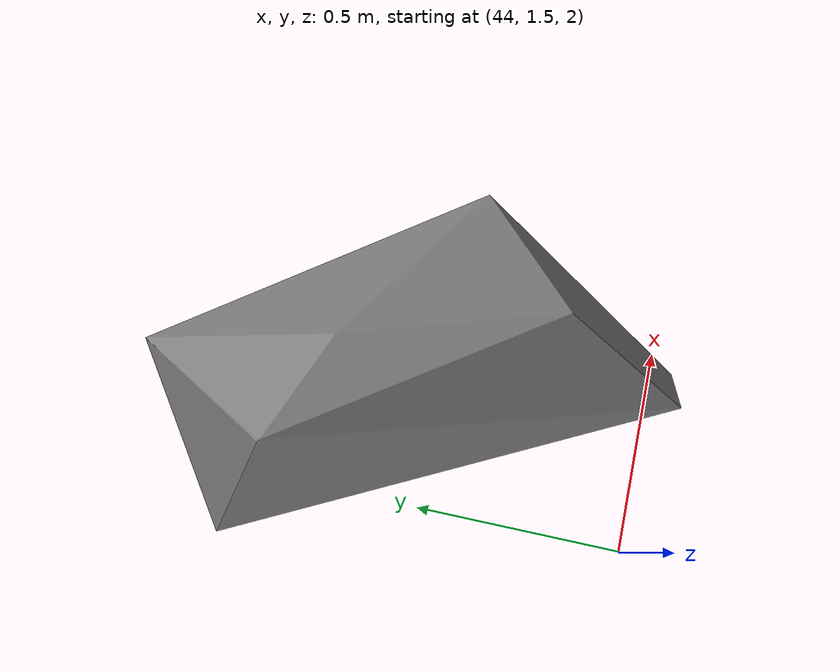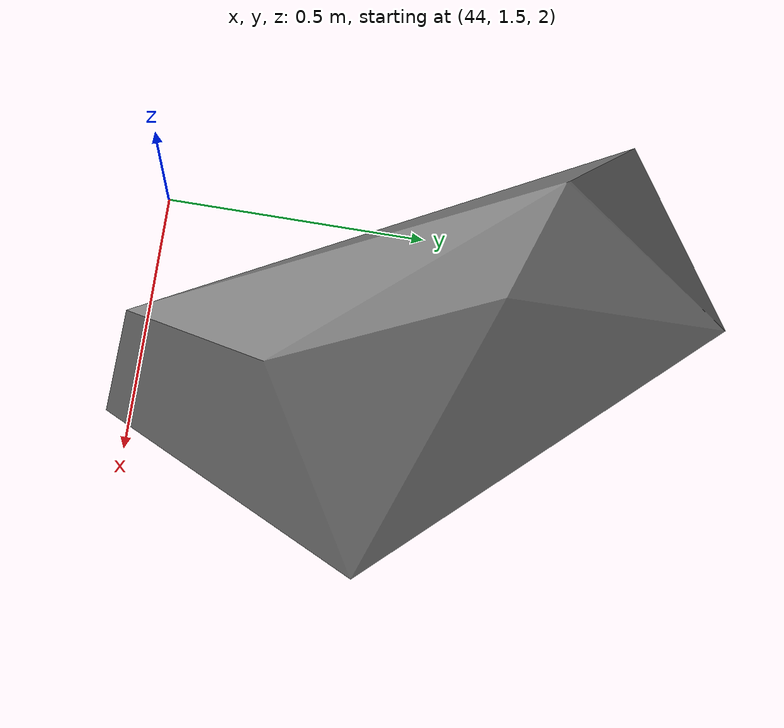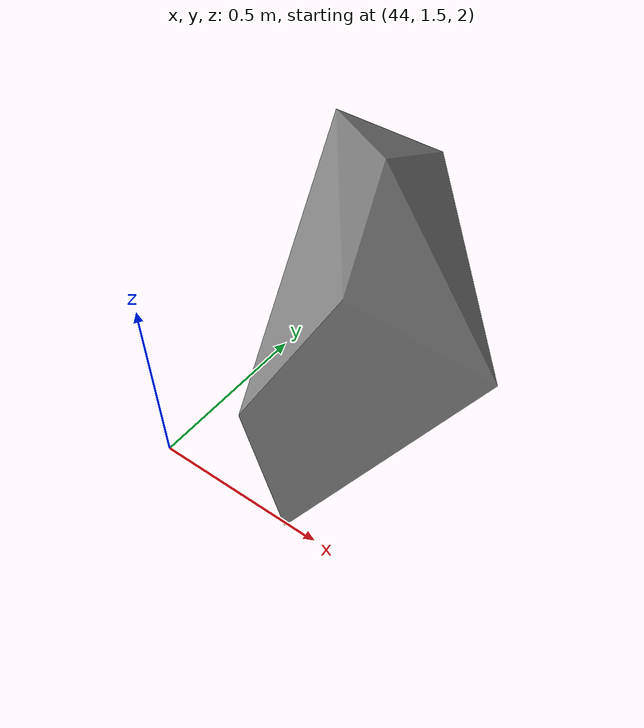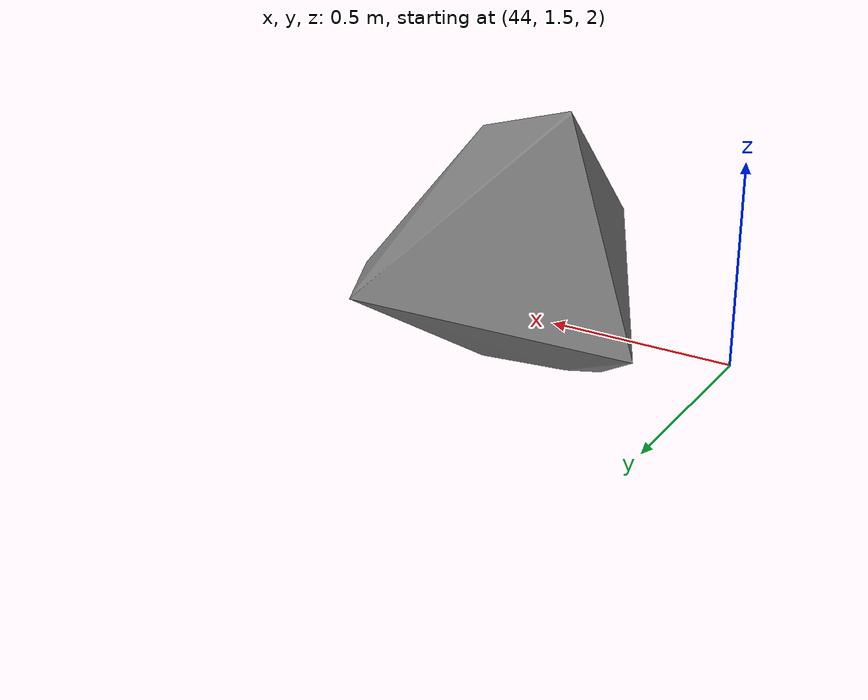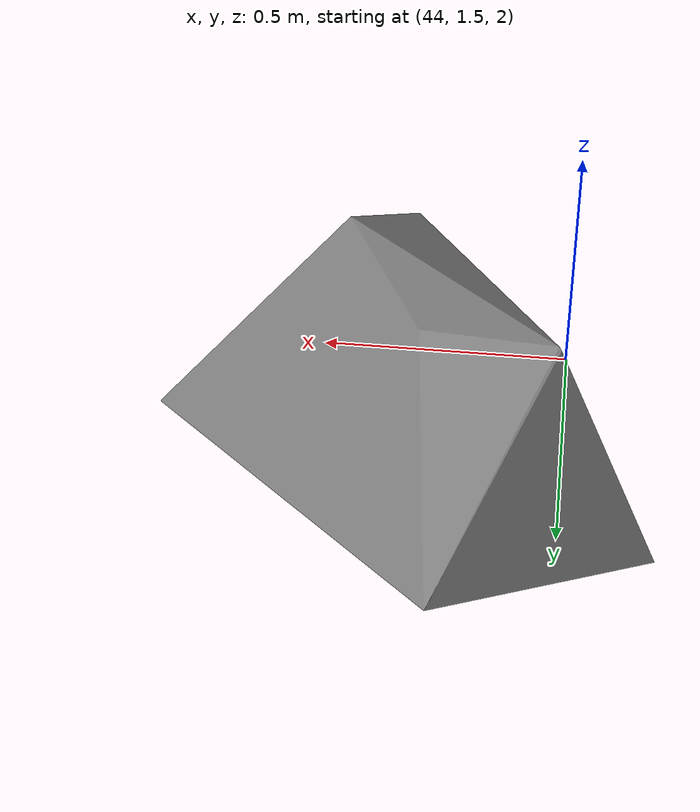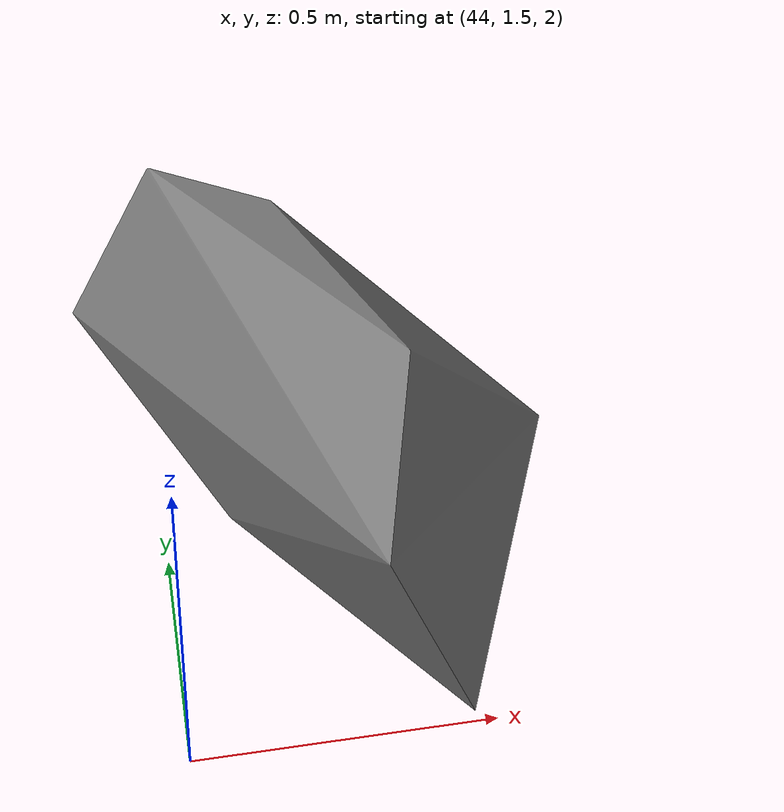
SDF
<sdf version="1.8">
 <model name="blue_mountains">
  <static>true</static>
  <link name="forest_24_20">
   <collision name="tree_17_trunk">
    <pose>43.88058 1.955433 0.2936664 0 0 -2.778348</pose>
    <geometry><cylinder><radius>0.04232648</radius><length>2.06516</length></cylinder></geometry>
   </collision>
   <collision name="plant_17_crown_0">
    <pose>43.8964 1.961449 -0.7389138 0 0 -2.778348</pose>
    <geometry>
     <mesh>
      <uri>model://blue_mountains/meshes/canopy_3_0.dae</uri>
      <scale>0.1693059 0.1693059 0.1535351</scale>
     </mesh>
    </geometry>
   </collision>
   <collision name="plant_17_crown_1">
    <pose>43.8964 1.961449 -0.7389138 0 0 -2.778348</pose>
    <geometry>
     <mesh>
      <uri>model://blue_mountains/meshes/canopy_3_1.dae</uri>
      <scale>0.1693059 0.1693059 0.1535351</scale>
     </mesh>
    </geometry>
   </collision>
   <collision name="tree_24_trunk">
    <pose>46.04396 2.340211 0.6161304 0 0 -0.8757194</pose>
    <geometry><cylinder><radius>0.04414667</radius><length>2.393888</length></cylinder></geometry>
   </collision>
   <collision name="plant_24_crown_0">
    <pose>46.03265 2.353773 -0.5808136 0 0 -0.8757194</pose>
    <geometry>
     <mesh>
      <uri>model://blue_mountains/meshes/canopy_3_0.dae</uri>
      <scale>0.1765867 0.1765867 0.1779744</scale>
     </mesh>
    </geometry>
   </collision>
   <collision name="plant_24_crown_1">
    <pose>46.03265 2.353773 -0.5808136 0 0 -0.8757194</pose>
    <geometry>
     <mesh>
      <uri>model://blue_mountains/meshes/canopy_3_1.dae</uri>
      <scale>0.1765867 0.1765867 0.1779744</scale>
     </mesh>
    </geometry>
   </collision>
   <collision name="tree_25_trunk">
    <pose>46.88848 6.833796 0.8125989 0 0 -0.4132312</pose>
    <geometry><cylinder><radius>0.04309978</radius><length>2.700168</length></cylinder></geometry>
   </collision>
   <collision name="plant_25_crown_0">
    <pose>46.87269 6.840719 -0.5374854 0 0 -0.4132312</pose>
    <geometry>
     <mesh>
      <uri>model://blue_mountains/meshes/canopy_4_0.dae</uri>
      <scale>0.1723991 0.1723991 0.2012076</scale>
     </mesh>
    </geometry>
   </collision>
   <collision name="plant_25_crown_1">
    <pose>46.87269 6.840719 -0.5374854 0 0 -0.4132312</pose>
    <geometry>
     <mesh>
      <uri>model://blue_mountains/meshes/canopy_4_1.dae</uri>
      <scale>0.1723991 0.1723991 0.2012076</scale>
     </mesh>
    </geometry>
   </collision>
   <collision name="tree_69_trunk">
    <pose>40.30244 2.726701 1.00124 0 0 2.627598</pose>
    <geometry><cylinder><radius>0.06481871</radius><length>3.474647</length></cylinder></geometry>
   </collision>
   <collision name="plant_69_crown_0">
    <pose>40.32502 2.713953 -0.7360833 0 0 2.627598</pose>
    <geometry>
     <mesh>
      <uri>model://blue_mountains/meshes/canopy_8_0.dae</uri>
      <scale>0.2592749 0.2592749 0.2585449</scale>
     </mesh>
    </geometry>
   </collision>
   <collision name="plant_69_crown_1">
    <pose>40.32502 2.713953 -0.7360833 0 0 2.627598</pose>
    <geometry>
     <mesh>
      <uri>model://blue_mountains/meshes/canopy_8_1.dae</uri>
      <scale>0.2592749 0.2592749 0.2585449</scale>
     </mesh>
    </geometry>
   </collision>
   <collision name="tree_70_trunk">
    <pose>47.3796 6.376393 1.044188 0 0 1.708533</pose>
    <geometry><cylinder><radius>0.05545289</radius><length>2.698984</length></cylinder></geometry>
   </collision>
   <collision name="plant_70_crown_0">
    <pose>47.38265 6.354422 -0.3053038 0 0 1.708533</pose>
    <geometry>
     <mesh>
      <uri>model://blue_mountains/meshes/canopy_2_0.dae</uri>
      <scale>0.2218116 0.2218116 0.1985788</scale>
     </mesh>
    </geometry>
   </collision>
   <collision name="plant_70_crown_1">
    <pose>47.38265 6.354422 -0.3053038 0 0 1.708533</pose>
    <geometry>
     <mesh>
      <uri>model://blue_mountains/meshes/canopy_2_1.dae</uri>
      <scale>0.2218116 0.2218116 0.1985788</scale>
     </mesh>
    </geometry>
   </collision>
   <collision name="tree_109_trunk">
    <pose>48.53465 3.633613 1.186815 0 0 -0.07925493</pose>
    <geometry><cylinder><radius>0.06679607</radius><length>3.117044</length></cylinder></geometry>
   </collision>
   <collision name="plant_109_crown_0">
    <pose>48.50802 3.635729 -0.3717065 0 0 -0.07925493</pose>
    <geometry>
     <mesh>
      <uri>model://blue_mountains/meshes/canopy_6_0.dae</uri>
      <scale>0.2671843 0.2671843 0.229764</scale>
     </mesh>
    </geometry>
   </collision>
   <collision name="plant_109_crown_1">
    <pose>48.50802 3.635729 -0.3717065 0 0 -0.07925493</pose>
    <geometry>
     <mesh>
      <uri>model://blue_mountains/meshes/canopy_6_1.dae</uri>
      <scale>0.2671843 0.2671843 0.229764</scale>
     </mesh>
    </geometry>
   </collision>
   <collision name="tree_202_trunk">
    <pose>44.90236 4.059264 0.7855443 0 0 -2.673284</pose>
    <geometry><cylinder><radius>0.03918626</radius><length>2.318995</length></cylinder></geometry>
   </collision>
   <collision name="plant_202_crown_0">
    <pose>44.91635 4.066339 -0.3739533 0 0 -2.673284</pose>
    <geometry>
     <mesh><uri>model://blue_mountains/meshes/canopy_5_0.dae</uri><scale>0.156745 0.156745 0.1743063</scale></mesh>
    </geometry>
   </collision>
   <collision name="plant_202_crown_1">
    <pose>44.91635 4.066339 -0.3739533 0 0 -2.673284</pose>
    <geometry>
     <mesh><uri>model://blue_mountains/meshes/canopy_5_1.dae</uri><scale>0.156745 0.156745 0.1743063</scale></mesh>
    </geometry>
   </collision>
   <collision name="tree_219_trunk">
    <pose>42.96822 2.877853 0.8094227 0 0 0.2845838</pose>
    <geometry><cylinder><radius>0.04914544</radius><length>2.870387</length></cylinder></geometry>
   </collision>
   <collision name="plant_219_crown_0">
    <pose>42.94935 2.872334 -0.6257708 0 0 0.2845838</pose>
    <geometry>
     <mesh>
      <uri>model://blue_mountains/meshes/canopy_1_0.dae</uri>
      <scale>0.1965818 0.1965818 0.2120091</scale>
     </mesh>
    </geometry>
   </collision>
   <collision name="plant_219_crown_1">
    <pose>42.94935 2.872334 -0.6257708 0 0 0.2845838</pose>
    <geometry>
     <mesh>
      <uri>model://blue_mountains/meshes/canopy_1_1.dae</uri>
      <scale>0.1965818 0.1965818 0.2120091</scale>
     </mesh>
    </geometry>
   </collision>
   <collision name="tree_225_trunk">
    <pose>45.15792 7.476365 0.06271546 0 0 -1.709854</pose>
    <geometry><cylinder><radius>0.05947654</radius><length>3.167583</length></cylinder></geometry>
   </collision>
   <collision name="plant_225_crown_0">
    <pose>45.16122 7.499926 -1.521076 0 0 -1.709854</pose>
    <geometry>
     <mesh>
      <uri>model://blue_mountains/meshes/canopy_6_0.dae</uri>
      <scale>0.2379061 0.2379061 0.2334894</scale>
     </mesh>
    </geometry>
   </collision>
   <collision name="plant_225_crown_1">
    <pose>45.16122 7.499926 -1.521076 0 0 -1.709854</pose>
    <geometry>
     <mesh>
      <uri>model://blue_mountains/meshes/canopy_6_1.dae</uri>
      <scale>0.2379061 0.2379061 0.2334894</scale>
     </mesh>
    </geometry>
   </collision>
   <collision name="tree_237_trunk">
    <pose>43.37805 6.944122 -0.3870439 0 0 -2.070411</pose>
    <geometry><cylinder><radius>0.0365816</radius><length>1.960356</length></cylinder></geometry>
   </collision>
   <collision name="plant_237_crown_0">
    <pose>43.38506 6.956966 -1.367222 0 0 -2.070411</pose>
    <geometry>
     <mesh>
      <uri>model://blue_mountains/meshes/canopy_3_0.dae</uri>
      <scale>0.1463264 0.1463264 0.1457434</scale>
     </mesh>
    </geometry>
   </collision>
   <collision name="plant_237_crown_1">
    <pose>43.38506 6.956966 -1.367222 0 0 -2.070411</pose>
    <geometry>
     <mesh>
      <uri>model://blue_mountains/meshes/canopy_3_1.dae</uri>
      <scale>0.1463264 0.1463264 0.1457434</scale>
     </mesh>
    </geometry>
   </collision>
   <collision name="tree_239_trunk">
    <pose>46.2365 7.061184 0.7125189 0 0 3.03354</pose>
    <geometry><cylinder><radius>0.06344903</radius><length>3.116059</length></cylinder></geometry>
   </collision>
   <collision name="plant_239_crown_0">
    <pose>46.26173 7.058447 -0.8455105 0 0 3.03354</pose>
    <geometry>
     <mesh>
      <uri>model://blue_mountains/meshes/canopy_7_0.dae</uri>
      <scale>0.2537961 0.2537961 0.2342851</scale>
     </mesh>
    </geometry>
   </collision>
   <collision name="plant_239_crown_1">
    <pose>46.26173 7.058447 -0.8455105 0 0 3.03354</pose>
    <geometry>
     <mesh>
      <uri>model://blue_mountains/meshes/canopy_7_1.dae</uri>
      <scale>0.2537961 0.2537961 0.2342851</scale>
     </mesh>
    </geometry>
   </collision>
   <collision name="tree_254_trunk">
    <pose>44.56623 4.12383 0.9970667 0 0 -0.5284217</pose>
    <geometry><cylinder><radius>0.05287283</radius><length>2.744487</length></cylinder></geometry>
   </collision>
   <collision name="plant_254_crown_0">
    <pose>44.54797 4.134493 -0.3751767 0 0 -0.5284217</pose>
    <geometry>
     <mesh>
      <uri>model://blue_mountains/meshes/canopy_0_0.dae</uri>
      <scale>0.2114913 0.2114913 0.2024043</scale>
     </mesh>
    </geometry>
   </collision>
   <collision name="plant_254_crown_1">
    <pose>44.54797 4.134493 -0.3751767 0 0 -0.5284217</pose>
    <geometry>
     <mesh>
      <uri>model://blue_mountains/meshes/canopy_0_1.dae</uri>
      <scale>0.2114913 0.2114913 0.2024043</scale>
     </mesh>
    </geometry>
   </collision>
   <collision name="tree_311_trunk">
    <pose>45.42013 5.328161 1.534154 0 0 1.892606</pose>
    <geometry><cylinder><radius>0.06121674</radius><length>3.462217</length></cylinder></geometry>
   </collision>
   <collision name="plant_311_crown_0">
    <pose>45.42788 5.304932 -0.1969545 0 0 1.892606</pose>
    <geometry>
     <mesh><uri>model://blue_mountains/meshes/canopy_6_0.dae</uri><scale>0.244867 0.244867 0.2552075</scale></mesh>
    </geometry>
   </collision>
   <collision name="plant_311_crown_1">
    <pose>45.42788 5.304932 -0.1969545 0 0 1.892606</pose>
    <geometry>
     <mesh><uri>model://blue_mountains/meshes/canopy_6_1.dae</uri><scale>0.244867 0.244867 0.2552075</scale></mesh>
    </geometry>
   </collision>
   <collision name="tree_324_trunk">
    <pose>41.49568 2.847259 1.377125 0 0 -2.615849</pose>
    <geometry><cylinder><radius>0.06626508</radius><length>4.102208</length></cylinder></geometry>
   </collision>
   <collision name="plant_324_crown_0">
    <pose>41.5186 2.860561 -0.6739788 0 0 -2.615849</pose>
    <geometry>
     <mesh>
      <uri>model://blue_mountains/meshes/canopy_1_0.dae</uri>
      <scale>0.2650603 0.2650603 0.3029924</scale>
     </mesh>
    </geometry>
   </collision>
   <collision name="plant_324_crown_1">
    <pose>41.5186 2.860561 -0.6739788 0 0 -2.615849</pose>
    <geometry>
     <mesh>
      <uri>model://blue_mountains/meshes/canopy_1_1.dae</uri>
      <scale>0.2650603 0.2650603 0.3029924</scale>
     </mesh>
    </geometry>
   </collision>
   <collision name="tree_346_trunk">
    <pose>42.30174 4.966258 1.109766 0 0 -1.763041</pose>
    <geometry><cylinder><radius>0.06688604</radius><length>3.20081</length></cylinder></geometry>
   </collision>
   <collision name="plant_346_crown_0">
    <pose>42.30685 4.992519 -0.4906394 0 0 -1.763041</pose>
    <geometry>
     <mesh>
      <uri>model://blue_mountains/meshes/canopy_0_0.dae</uri>
      <scale>0.2675441 0.2675441 0.2360579</scale>
     </mesh>
    </geometry>
   </collision>
   <collision name="plant_346_crown_1">
    <pose>42.30685 4.992519 -0.4906394 0 0 -1.763041</pose>
    <geometry>
     <mesh>
      <uri>model://blue_mountains/meshes/canopy_0_1.dae</uri>
      <scale>0.2675441 0.2675441 0.2360579</scale>
     </mesh>
    </geometry>
   </collision>
   <collision name="tree_347_trunk">
    <pose>39.98901 4.229615 0.5821648 0 0 2.965822</pose>
    <geometry><cylinder><radius>0.05212402</radius><length>2.407369</length></cylinder></geometry>
   </collision>
   <collision name="plant_347_crown_0">
    <pose>40.00954 4.225969 -0.6215198 0 0 2.965822</pose>
    <geometry>
     <mesh>
      <uri>model://blue_mountains/meshes/canopy_1_0.dae</uri>
      <scale>0.2084961 0.2084961 0.1778103</scale>
     </mesh>
    </geometry>
   </collision>
   <collision name="plant_347_crown_1">
    <pose>40.00954 4.225969 -0.6215198 0 0 2.965822</pose>
    <geometry>
     <mesh>
      <uri>model://blue_mountains/meshes/canopy_1_1.dae</uri>
      <scale>0.2084961 0.2084961 0.1778103</scale>
     </mesh>
    </geometry>
   </collision>
   <collision name="tree_391_trunk">
    <pose>43.75017 1.193868 1.103154 0 0 -1.088851</pose>
    <geometry><cylinder><radius>0.06221599</radius><length>3.936477</length></cylinder></geometry>
   </collision>
   <collision name="plant_391_crown_0">
    <pose>43.73864 1.215919 -0.8650846 0 0 -1.088851</pose>
    <geometry>
     <mesh><uri>model://blue_mountains/meshes/canopy_2_0.dae</uri><scale>0.248864 0.248864 0.2896278</scale></mesh>
    </geometry>
   </collision>
   <collision name="plant_391_crown_1">
    <pose>43.73864 1.215919 -0.8650846 0 0 -1.088851</pose>
    <geometry>
     <mesh><uri>model://blue_mountains/meshes/canopy_2_1.dae</uri><scale>0.248864 0.248864 0.2896278</scale></mesh>
    </geometry>
   </collision>
   <collision name="tree_415_trunk">
    <pose>46.4089 6.603803 1.293009 0 0 -1.234259</pose>
    <geometry><cylinder><radius>0.06211939</radius><length>3.495799</length></cylinder></geometry>
   </collision>
   <collision name="plant_415_crown_0">
    <pose>46.4007 6.627256 -0.4548907 0 0 -1.234259</pose>
    <geometry>
     <mesh>
      <uri>model://blue_mountains/meshes/canopy_8_0.dae</uri>
      <scale>0.2484775 0.2484775 0.2601188</scale>
     </mesh>
    </geometry>
   </collision>
   <collision name="plant_415_crown_1">
    <pose>46.4007 6.627256 -0.4548907 0 0 -1.234259</pose>
    <geometry>
     <mesh>
      <uri>model://blue_mountains/meshes/canopy_8_1.dae</uri>
      <scale>0.2484775 0.2484775 0.2601188</scale>
     </mesh>
    </geometry>
   </collision>
   <collision name="tree_435_trunk">
    <pose>49.8449 2.753804 1.762204 0 0 2.601763</pose>
    <geometry><cylinder><radius>0.07002596</radius><length>4.365989</length></cylinder></geometry>
   </collision>
   <collision name="plant_435_crown_0">
    <pose>49.86893 2.739407 -0.4207902 0 0 2.601763</pose>
    <geometry>
     <mesh>
      <uri>model://blue_mountains/meshes/canopy_7_0.dae</uri>
      <scale>0.2801038 0.2801038 0.3282627</scale>
     </mesh>
    </geometry>
   </collision>
   <collision name="plant_435_crown_1">
    <pose>49.86893 2.739407 -0.4207902 0 0 2.601763</pose>
    <geometry>
     <mesh>
      <uri>model://blue_mountains/meshes/canopy_7_1.dae</uri>
      <scale>0.2801038 0.2801038 0.3282627</scale>
     </mesh>
    </geometry>
   </collision>
   <collision name="tree_439_trunk">
    <pose>46.88307 0.9740257 0.5970518 0 0 1.64016</pose>
    <geometry><cylinder><radius>0.04366874</radius><length>2.631106</length></cylinder></geometry>
   </collision>
   <collision name="plant_439_crown_0">
    <pose>46.88428 0.9566002 -0.7185011 0 0 1.64016</pose>
    <geometry>
     <mesh><uri>model://blue_mountains/meshes/canopy_1_0.dae</uri><scale>0.174675 0.174675 0.1943356</scale></mesh>
    </geometry>
   </collision>
   <collision name="plant_439_crown_1">
    <pose>46.88428 0.9566002 -0.7185011 0 0 1.64016</pose>
    <geometry>
     <mesh><uri>model://blue_mountains/meshes/canopy_1_1.dae</uri><scale>0.174675 0.174675 0.1943356</scale></mesh>
    </geometry>
   </collision>
   <visual name="forest_visual">
    <geometry><mesh><uri>model://blue_mountains/meshes/forest_24_20.dae</uri></mesh></geometry>
    <cast_shadows>false</cast_shadows>
   </visual>
  </link>
 </model>
</sdf>
